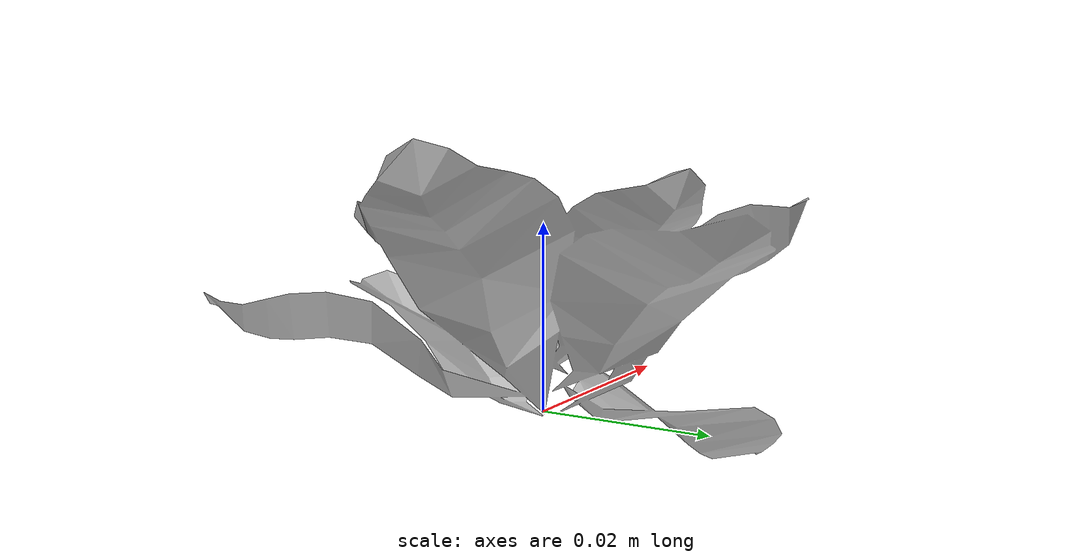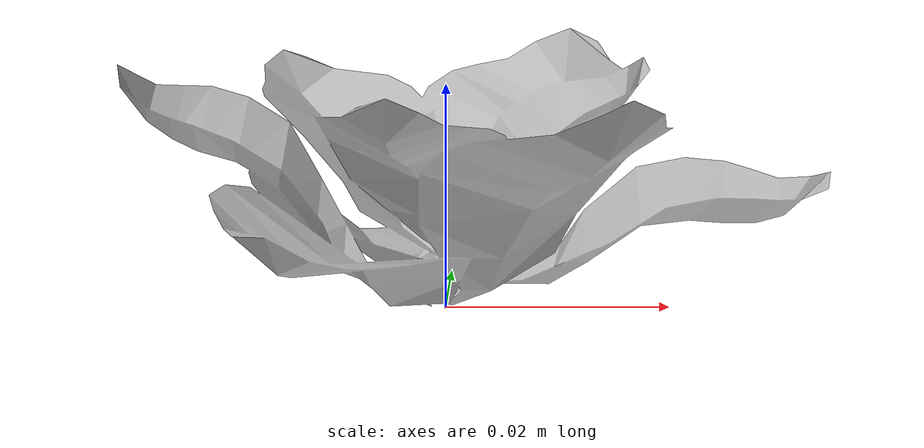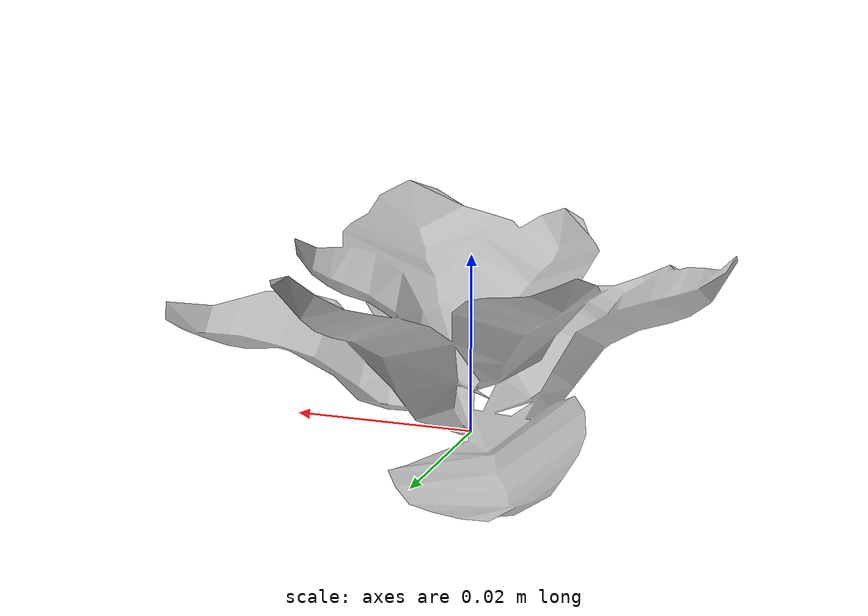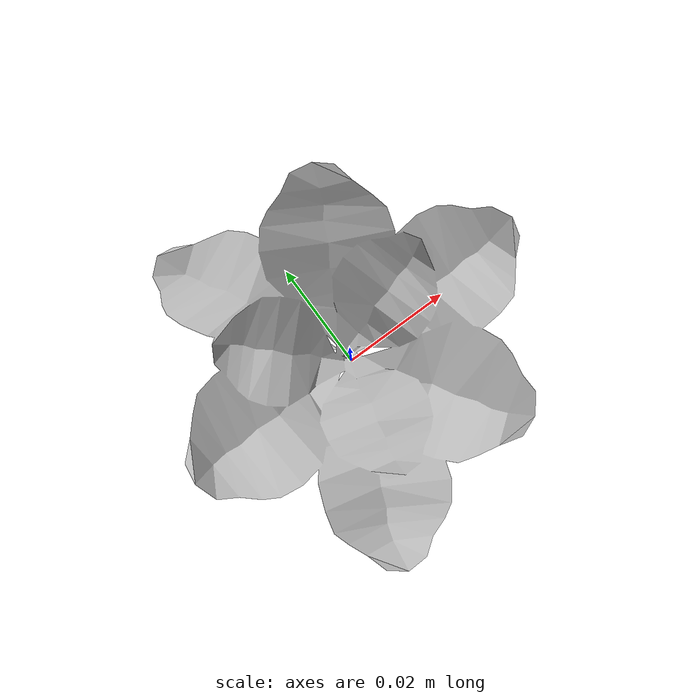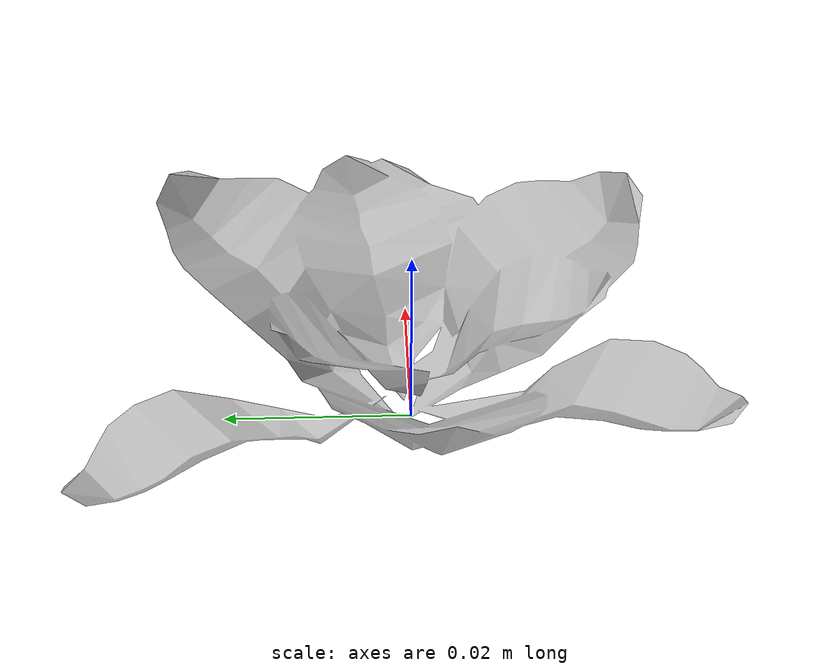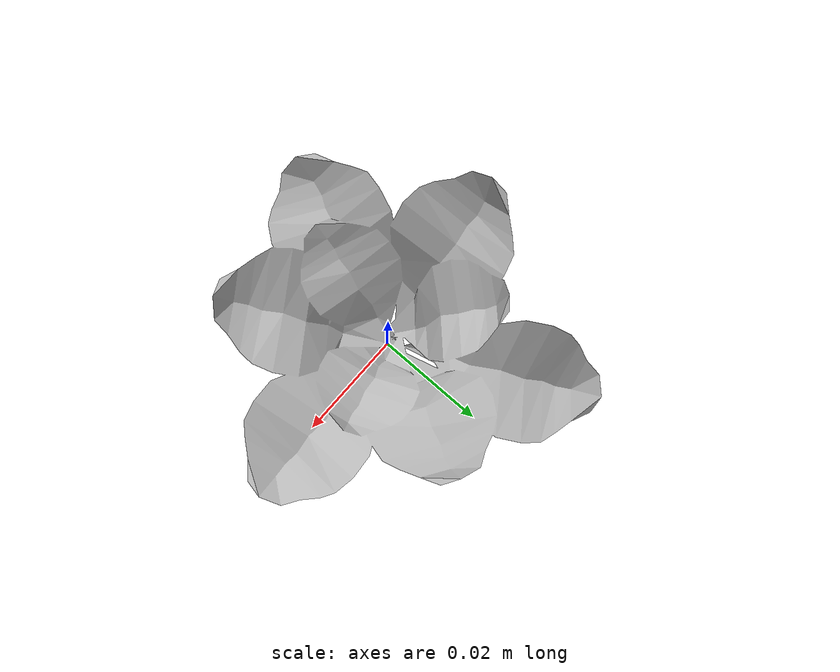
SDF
<?xml version="1.0"?>
<sdf version="1.6">
  <model name="simple-flower">
    <static>true</static>
    <link name="flower_link">
      <visual name="flower_visual">
        <geometry>
          <mesh>
             <uri>model://simple-flower/meshes/flower.dae</uri>
             <scale>0.4 0.4 0.4</scale>
          </mesh>
        </geometry>
        <material>
          <script>
            <uri>model://simple-flower/materials/scripts/</uri>
            <uri>model://simple-flower/materials/textures/</uri>
            <name>Flower/Flower</name>
          </script>
        </material>
      </visual>
    </link>
  </model>
</sdf>
